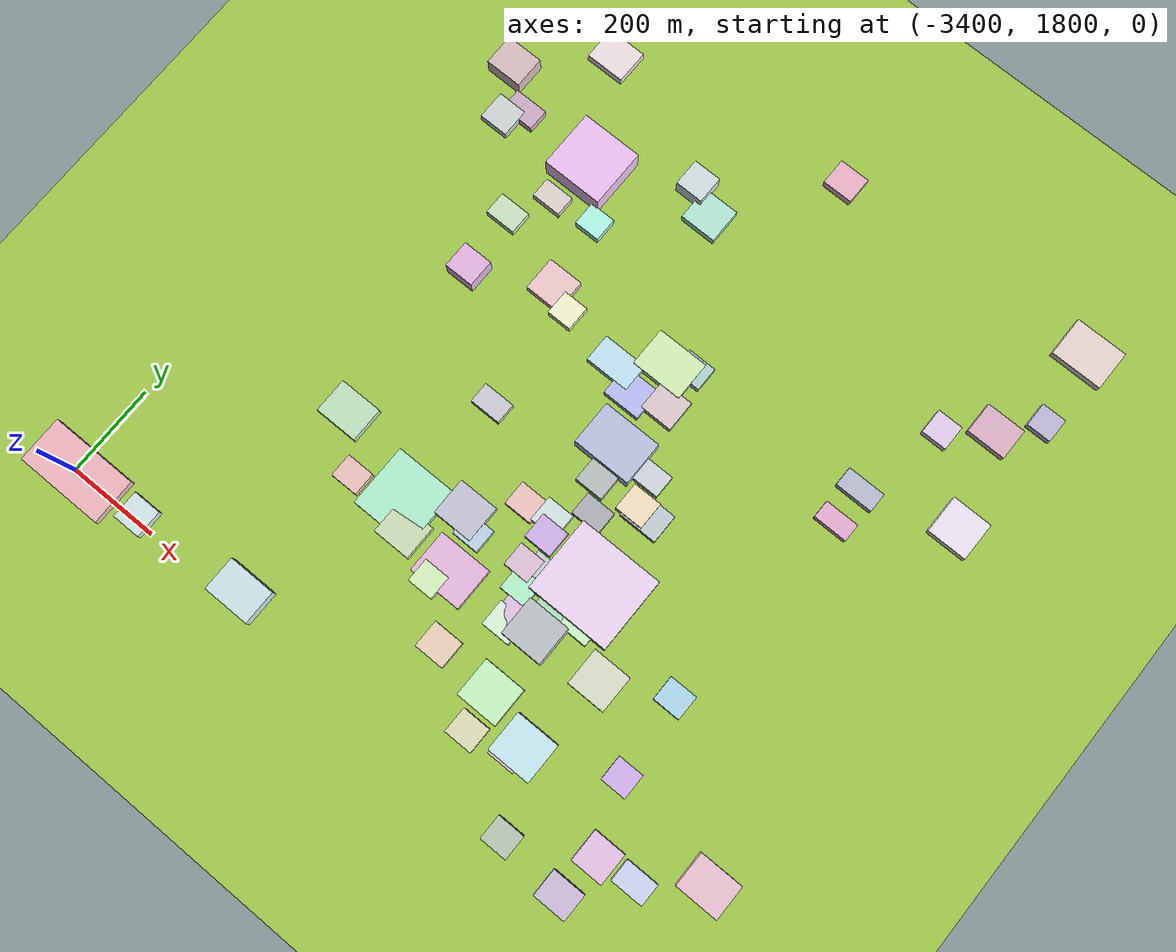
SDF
<sdf version="1.9">
 <world name="city_map">
  <model name="ground_plane">
   <static>1</static>
   <link name="link">
    <collision name="collision">
     <geometry><plane><normal>0 0 1</normal><size>11000 11000</size></plane></geometry>
    </collision>
    <visual name="visual">
     <geometry><plane><normal>0 0 1</normal><size>11000 11000</size></plane></geometry>
     <material>
      <ambient>0.551 0.712 0.210 1</ambient>
      <diffuse>0.651 0.812 0.310 1</diffuse>
      <specular>0.1 0.1 0.05 1</specular>
     </material>
    </visual>
   </link>
  </model>
  <model name="building_879147786">
   <static>1</static>
   <pose>-2475.6158864132262 2263.349169115743 24.0 0 0 0</pose>
   <link name="link">
    <collision name="collision">
     <geometry><box><size>185.12046100391242 163.76940000043305 48.0</size></box></geometry>
    </collision>
    <visual name="visual">
     <cast_shadows>false</cast_shadows>
     <geometry><box><size>185.12046100391242 163.76940000043305 48.0</size></box></geometry>
     <material>
      <ambient>0.858 0.766 0.887 1</ambient>
      <diffuse>0.958 0.866 0.987 1</diffuse>
      <specular>0.287 0.260 0.296 1</specular>
      <emissive>0.01 0.01 0.01 1</emissive>
     </material>
    </visual>
   </link>
  </model>
  <model name="building_85861803">
   <static>1</static>
   <pose>-3391.635046473772 1801.335572656015 10.0 0 0 0</pose>
   <link name="link">
    <collision name="collision">
     <geometry><box><size>196.1031298893377 102.05340000008789 20</size></box></geometry>
    </collision>
    <visual name="visual">
     <cast_shadows>false</cast_shadows>
     <geometry><box><size>196.1031298893377 102.05340000008789 20</size></box></geometry>
     <material>
      <ambient>0.858 0.639 0.666 1</ambient>
      <diffuse>0.958 0.739 0.766 1</diffuse>
      <specular>0.287 0.222 0.230 1</specular>
      <emissive>0.01 0.01 0.01 1</emissive>
     </material>
    </visual>
   </link>
  </model>
  <model name="building_866045146">
   <static>1</static>
   <pose>-2866.7450912046484 2163.6793318669265 10.0 0 0 0</pose>
   <link name="link">
    <collision name="collision">
     <geometry><box><size>136.9206914513694 136.65209999980732 20</size></box></geometry>
    </collision>
    <visual name="visual">
     <cast_shadows>false</cast_shadows>
     <geometry><box><size>136.9206914513694 136.65209999980732 20</size></box></geometry>
     <material>
      <ambient>0.611 0.873 0.738 1</ambient>
      <diffuse>0.711 0.973 0.838 1</diffuse>
      <specular>0.213 0.292 0.251 1</specular>
      <emissive>0.01 0.01 0.01 1</emissive>
     </material>
    </visual>
   </link>
  </model>
  <model name="building_344655658">
   <static>1</static>
   <pose>-3015.9660182557045 2918.9910726629623 27.0 0 0 0</pose>
   <link name="link">
    <collision name="collision">
     <geometry><box><size>134.49679604138012 128.68229999973835 54.0</size></box></geometry>
    </collision>
    <visual name="visual">
     <cast_shadows>false</cast_shadows>
     <geometry><box><size>134.49679604138012 128.68229999973835 54.0</size></box></geometry>
     <material>
      <ambient>0.863 0.682 0.879 1</ambient>
      <diffuse>0.963 0.782 0.979 1</diffuse>
      <specular>0.289 0.235 0.294 1</specular>
      <emissive>0.01 0.01 0.01 1</emissive>
     </material>
    </visual>
   </link>
  </model>
  <model name="building_946005720">
   <static>1</static>
   <pose>-2614.292848086629 2502.6022625291644 21.48143881944182 0 0 0</pose>
   <link name="link">
    <collision name="collision">
     <geometry><box><size>129.5526520206384 96.9806999999605 42.96287763888364</size></box></geometry>
    </collision>
    <visual name="visual">
     <cast_shadows>false</cast_shadows>
     <geometry><box><size>129.5526520206384 96.9806999999605 42.96287763888364</size></box></geometry>
     <material>
      <ambient>0.655 0.685 0.811 1</ambient>
      <diffuse>0.755 0.785 0.911 1</diffuse>
      <specular>0.227 0.236 0.273 1</specular>
      <emissive>0.01 0.01 0.01 1</emissive>
     </material>
    </visual>
   </link>
  </model>
  <model name="building_783467833">
   <static>1</static>
   <pose>-2706.9545047538063 2112.014782937045 10.0 0 0 0</pose>
   <link name="link">
    <collision name="collision">
     <geometry><box><size>118.29269999978465 93.9365907309301 20</size></box></geometry>
    </collision>
    <visual name="visual">
     <cast_shadows>false</cast_shadows>
     <geometry><box><size>118.29269999978465 93.9365907309301 20</size></box></geometry>
     <material>
      <ambient>0.834 0.642 0.799 1</ambient>
      <diffuse>0.934 0.742 0.899 1</diffuse>
      <specular>0.280 0.222 0.270 1</specular>
      <emissive>0.01 0.01 0.01 1</emissive>
     </material>
    </visual>
   </link>
  </model>
  <model name="building_215615891">
   <static>1</static>
   <pose>-2010.9463017703183 3234.4588021308014 10.0 0 0 0</pose>
   <link name="link">
    <collision name="collision">
     <geometry><box><size>113.16449999979739 88.53594554040069 20</size></box></geometry>
    </collision>
    <visual name="visual">
     <cast_shadows>false</cast_shadows>
     <geometry><box><size>113.16449999979739 88.53594554040069 20</size></box></geometry>
     <material>
      <ambient>0.837 0.768 0.740 1</ambient>
      <diffuse>0.937 0.868 0.840 1</diffuse>
      <specular>0.281 0.260 0.252 1</specular>
      <emissive>0.01 0.01 0.01 1</emissive>
     </material>
    </visual>
   </link>
  </model>
  <model name="building_570115807">
   <static>1</static>
   <pose>-2635.9378683675336 2694.9322512084404 10.5 0 0 0</pose>
   <link name="link">
    <collision name="collision">
     <geometry><box><size>113.61960000038351 86.33157377373661 21.0</size></box></geometry>
    </collision>
    <visual name="visual">
     <cast_shadows>false</cast_shadows>
     <geometry><box><size>113.61960000038351 86.33157377373661 21.0</size></box></geometry>
     <material>
      <ambient>0.751 0.882 0.631 1</ambient>
      <diffuse>0.851 0.982 0.731 1</diffuse>
      <specular>0.255 0.295 0.219 1</specular>
      <emissive>0.01 0.01 0.01 1</emissive>
     </material>
    </visual>
   </link>
  </model>
  <model name="building_210839665">
   <static>1</static>
   <pose>-2386.6716477241607 1948.1128758260165 32.9745970106186 0 0 0</pose>
   <link name="link">
    <collision name="collision">
     <geometry><box><size>96.09269999983638 87.3710264299206 65.9491940212372</size></box></geometry>
    </collision>
    <visual name="visual">
     <cast_shadows>false</cast_shadows>
     <geometry><box><size>96.09269999983638 87.3710264299206 65.9491940212372</size></box></geometry>
     <material>
      <ambient>0.705 0.836 0.875 1</ambient>
      <diffuse>0.805 0.936 0.975 1</diffuse>
      <specular>0.241 0.281 0.292 1</specular>
      <emissive>0.01 0.01 0.01 1</emissive>
     </material>
    </visual>
   </link>
  </model>
  <model name="building_899558853">
   <static>1</static>
   <pose>-2498.672047824087 1986.0535114221284 18.0 0 0 0</pose>
   <link name="link">
    <collision name="collision">
     <geometry><box><size>92.51504839316905 85.60320000029265 36.0</size></box></geometry>
    </collision>
    <visual name="visual">
     <cast_shadows>false</cast_shadows>
     <geometry><box><size>92.51504839316905 85.60320000029265 36.0</size></box></geometry>
     <material>
      <ambient>0.698 0.898 0.680 1</ambient>
      <diffuse>0.798 0.998 0.780 1</diffuse>
      <specular>0.239 0.299 0.234 1</specular>
      <emissive>0.01 0.01 0.01 1</emissive>
     </material>
    </visual>
   </link>
  </model>
  <model name="building_577286876">
   <static>1</static>
   <pose>-2989.4264043737608 1829.2795751096094 17.494508205359544 0 0 0</pose>
   <link name="link">
    <collision name="collision">
     <geometry><box><size>104.11698517913607 75.80190000011555 34.98901641071909</size></box></geometry>
    </collision>
    <visual name="visual">
     <cast_shadows>false</cast_shadows>
     <geometry><box><size>104.11698517913607 75.80190000011555 34.98901641071909</size></box></geometry>
     <material>
      <ambient>0.713 0.819 0.828 1</ambient>
      <diffuse>0.813 0.919 0.928 1</diffuse>
      <specular>0.244 0.276 0.278 1</specular>
      <emissive>0.01 0.01 0.01 1</emissive>
     </material>
    </visual>
   </link>
  </model>
  <model name="building_947086551">
   <static>1</static>
   <pose>-2504.7838367184354 2125.1626707327173 39.74862783147963 0 0 0</pose>
   <link name="link">
    <collision name="collision">
     <geometry><box><size>91.5941470257274 85.11479999931737 79.49725566295926</size></box></geometry>
    </collision>
    <visual name="visual">
     <cast_shadows>false</cast_shadows>
     <geometry><box><size>91.5941470257274 85.11479999931737 79.49725566295926</size></box></geometry>
     <material>
      <ambient>0.660 0.675 0.693 1</ambient>
      <diffuse>0.760 0.775 0.793 1</diffuse>
      <specular>0.228 0.233 0.238 1</specular>
      <emissive>0.01 0.01 0.01 1</emissive>
     </material>
    </visual>
   </link>
  </model>
  <model name="building_627828713">
   <static>1</static>
   <pose>-2002.8119284216698 2794.1280551823697 10.5 0 0 0</pose>
   <link name="link">
    <collision name="collision">
     <geometry><box><size>87.40140000001162 85.04039429190097 21.0</size></box></geometry>
    </collision>
    <visual name="visual">
     <cast_shadows>false</cast_shadows>
     <geometry><box><size>87.40140000001162 85.04039429190097 21.0</size></box></geometry>
     <material>
      <ambient>0.851 0.821 0.896 1</ambient>
      <diffuse>0.951 0.921 0.996 1</diffuse>
      <specular>0.285 0.276 0.299 1</specular>
      <emissive>0.01 0.01 0.01 1</emissive>
     </material>
    </visual>
   </link>
  </model>
  <model name="building_940536575">
   <static>1</static>
   <pose>-1965.4070207359505 1971.2268262350988 10.5 0 0 0</pose>
   <link name="link">
    <collision name="collision">
     <geometry><box><size>95.87076168859215 76.65659999985053 21.0</size></box></geometry>
    </collision>
    <visual name="visual">
     <cast_shadows>false</cast_shadows>
     <geometry><box><size>95.87076168859215 76.65659999985053 21.0</size></box></geometry>
     <material>
      <ambient>0.854 0.677 0.743 1</ambient>
      <diffuse>0.954 0.777 0.843 1</diffuse>
      <specular>0.286 0.233 0.253 1</specular>
      <emissive>0.01 0.01 0.01 1</emissive>
     </material>
    </visual>
   </link>
  </model>
  <model name="building_670704136">
   <static>1</static>
   <pose>-3062.4952320343245 2225.1962430927715 10.5 0 0 0</pose>
   <link name="link">
    <collision name="collision">
     <geometry><box><size>94.95426636092446 76.23480000044225 21.0</size></box></geometry>
    </collision>
    <visual name="visual">
     <cast_shadows>false</cast_shadows>
     <geometry><box><size>94.95426636092446 76.23480000044225 21.0</size></box></geometry>
     <material>
      <ambient>0.676 0.819 0.661 1</ambient>
      <diffuse>0.776 0.919 0.761 1</diffuse>
      <specular>0.233 0.276 0.228 1</specular>
      <emissive>0.01 0.01 0.01 1</emissive>
     </material>
    </visual>
   </link>
  </model>
  <model name="building_35139141">
   <static>1</static>
   <pose>-2758.6938292328455 2219.1275292376686 10.5 0 0 0</pose>
   <link name="link">
    <collision name="collision">
     <geometry><box><size>88.61489346797902 81.27419999939178 21.0</size></box></geometry>
    </collision>
    <visual name="visual">
     <cast_shadows>false</cast_shadows>
     <geometry><box><size>88.61489346797902 81.27419999939178 21.0</size></box></geometry>
     <material>
      <ambient>0.689 0.690 0.761 1</ambient>
      <diffuse>0.789 0.790 0.861 1</diffuse>
      <specular>0.237 0.237 0.258 1</specular>
      <emissive>0.01 0.01 0.01 1</emissive>
     </material>
    </visual>
   </link>
  </model>
  <model name="building_981152130">
   <static>1</static>
   <pose>-2355.663001954758 2131.568528507929 10.5 0 0 0</pose>
   <link name="link">
    <collision name="collision">
     <geometry><box><size>85.46371120973969 82.21770000016448 21.0</size></box></geometry>
    </collision>
    <visual name="visual">
     <cast_shadows>false</cast_shadows>
     <geometry><box><size>85.46371120973969 82.21770000016448 21.0</size></box></geometry>
     <material>
      <ambient>0.776 0.806 0.713 1</ambient>
      <diffuse>0.876 0.906 0.813 1</diffuse>
      <specular>0.263 0.272 0.244 1</specular>
      <emissive>0.01 0.01 0.01 1</emissive>
     </material>
    </visual>
   </link>
  </model>
  <model name="building_1615853">
   <static>1</static>
   <pose>-3129.561694613131 3136.280148766275 10.0 0 0 0</pose>
   <link name="link">
    <collision name="collision">
     <geometry><box><size>86.26920000018856 73.49223417632824 20</size></box></geometry>
    </collision>
    <visual name="visual">
     <cast_shadows>false</cast_shadows>
     <geometry><box><size>86.26920000018856 73.49223417632824 20</size></box></geometry>
     <material>
      <ambient>0.861 0.809 0.814 1</ambient>
      <diffuse>0.961 0.909 0.914 1</diffuse>
      <specular>0.288 0.273 0.274 1</specular>
      <emissive>0.01 0.01 0.01 1</emissive>
     </material>
    </visual>
   </link>
  </model>
  <model name="building_337979278">
   <static>1</static>
   <pose>-2826.712456906082 2115.6351810619067 10.0 0 0 0</pose>
   <link name="link">
    <collision name="collision">
     <geometry><box><size>83.58727454214666 75.53550000015719 20</size></box></geometry>
    </collision>
    <visual name="visual">
     <cast_shadows>false</cast_shadows>
     <geometry><box><size>83.58727454214666 75.53550000015719 20</size></box></geometry>
     <material>
      <ambient>0.724 0.798 0.642 1</ambient>
      <diffuse>0.824 0.898 0.742 1</diffuse>
      <specular>0.247 0.269 0.223 1</specular>
      <emissive>0.01 0.01 0.01 1</emissive>
     </material>
    </visual>
   </link>
  </model>
  <model name="building_630728748">
   <static>1</static>
   <pose>-2767.26613560664 2987.1128462501283 10.0 0 0 0</pose>
   <link name="link">
    <collision name="collision">
     <geometry><box><size>80.58600000002514 76.33617782227033 20</size></box></geometry>
    </collision>
    <visual name="visual">
     <cast_shadows>false</cast_shadows>
     <geometry><box><size>80.58600000002514 76.33617782227033 20</size></box></geometry>
     <material>
      <ambient>0.617 0.838 0.778 1</ambient>
      <diffuse>0.717 0.938 0.878 1</diffuse>
      <specular>0.215 0.282 0.263 1</specular>
      <emissive>0.01 0.01 0.01 1</emissive>
     </material>
    </visual>
   </link>
  </model>
  <model name="building_688814182">
   <static>1</static>
   <pose>-2060.4743428047454 2992.831896157199 10.0 0 0 0</pose>
   <link name="link">
    <collision name="collision">
     <geometry><box><size>86.11715726558552 69.53039999938682 20</size></box></geometry>
    </collision>
    <visual name="visual">
     <cast_shadows>false</cast_shadows>
     <geometry><box><size>86.11715726558552 69.53039999938682 20</size></box></geometry>
     <material>
      <ambient>0.792 0.619 0.694 1</ambient>
      <diffuse>0.892 0.719 0.794 1</diffuse>
      <specular>0.268 0.216 0.238 1</specular>
      <emissive>0.01 0.01 0.01 1</emissive>
     </material>
    </visual>
   </link>
  </model>
  <model name="building_608480970">
   <static>1</static>
   <pose>-2718.6632805286345 2630.48441738512 10.0 0 0 0</pose>
   <link name="link">
    <collision name="collision">
     <geometry><box><size>98.36819999961222 60.801918084848445 20</size></box></geometry>
    </collision>
    <visual name="visual">
     <cast_shadows>false</cast_shadows>
     <geometry><box><size>98.36819999961222 60.801918084848445 20</size></box></geometry>
     <material>
      <ambient>0.676 0.817 0.879 1</ambient>
      <diffuse>0.776 0.917 0.979 1</diffuse>
      <specular>0.233 0.275 0.294 1</specular>
      <emissive>0.01 0.01 0.01 1</emissive>
     </material>
    </visual>
   </link>
  </model>
  <model name="building_79071397">
   <static>1</static>
   <pose>-2914.463725740065 2675.810282062825 10.0 0 0 0</pose>
   <link name="link">
    <collision name="collision">
     <geometry><box><size>78.38820000036861 74.90331681163828 20</size></box></geometry>
    </collision>
    <visual name="visual">
     <cast_shadows>false</cast_shadows>
     <geometry><box><size>78.38820000036861 74.90331681163828 20</size></box></geometry>
     <material>
      <ambient>0.868 0.714 0.727 1</ambient>
      <diffuse>0.968 0.814 0.827 1</diffuse>
      <specular>0.290 0.244 0.248 1</specular>
      <emissive>0.01 0.01 0.01 1</emissive>
     </material>
    </visual>
   </link>
  </model>
  <model name="building_448837698">
   <static>1</static>
   <pose>-2658.3584441567004 2603.887920911739 10.0 0 0 0</pose>
   <link name="link">
    <collision name="collision">
     <geometry><box><size>83.13899999988905 68.85592324830375 20</size></box></geometry>
    </collision>
    <visual name="visual">
     <cast_shadows>false</cast_shadows>
     <geometry><box><size>83.13899999988905 68.85592324830375 20</size></box></geometry>
     <material>
      <ambient>0.651 0.671 0.881 1</ambient>
      <diffuse>0.751 0.771 0.981 1</diffuse>
      <specular>0.225 0.231 0.294 1</specular>
      <emissive>0.01 0.01 0.01 1</emissive>
     </material>
    </visual>
   </link>
  </model>
  <model name="building_640028606">
   <static>1</static>
   <pose>-3276.129303851273 2986.666077693029 19.5 0 0 0</pose>
   <link name="link">
    <collision name="collision">
     <geometry><box><size>81.66900226531105 69.53040000017552 39.0</size></box></geometry>
    </collision>
    <visual name="visual">
     <cast_shadows>false</cast_shadows>
     <geometry><box><size>81.66900226531105 69.53040000017552 39.0</size></box></geometry>
     <material>
      <ambient>0.761 0.664 0.669 1</ambient>
      <diffuse>0.861 0.764 0.769 1</diffuse>
      <specular>0.258 0.229 0.231 1</specular>
      <emissive>0.01 0.01 0.01 1</emissive>
     </material>
    </visual>
   </link>
  </model>
  <model name="building_61134350">
   <static>1</static>
   <pose>-2481.7664568403006 2433.263886146131 10.0 0 0 0</pose>
   <link name="link">
    <collision name="collision">
     <geometry><box><size>85.60320000029265 63.17412362723873 20</size></box></geometry>
    </collision>
    <visual name="visual">
     <cast_shadows>false</cast_shadows>
     <geometry><box><size>85.60320000029265 63.17412362723873 20</size></box></geometry>
     <material>
      <ambient>0.685 0.734 0.761 1</ambient>
      <diffuse>0.785 0.834 0.861 1</diffuse>
      <specular>0.235 0.250 0.258 1</specular>
      <emissive>0.01 0.01 0.01 1</emissive>
     </material>
    </visual>
   </link>
  </model>
  <model name="building_143504427">
   <static>1</static>
   <pose>-2154.3055944039324 1882.1047162196348 10.0 0 0 0</pose>
   <link name="link">
    <collision name="collision">
     <geometry><box><size>70.83085970901733 70.59600000000898 20</size></box></geometry>
    </collision>
    <visual name="visual">
     <cast_shadows>false</cast_shadows>
     <geometry><box><size>70.83085970901733 70.59600000000898 20</size></box></geometry>
     <material>
      <ambient>0.829 0.679 0.836 1</ambient>
      <diffuse>0.929 0.779 0.936 1</diffuse>
      <specular>0.279 0.234 0.281 1</specular>
      <emissive>0.01 0.01 0.01 1</emissive>
     </material>
    </visual>
   </link>
  </model>
  <model name="building_810127790">
   <static>1</static>
   <pose>-2589.1663256776405 2626.3164838348075 10.0 0 0 0</pose>
   <link name="link">
    <collision name="collision">
     <geometry><box><size>72.10560000029886 67.86327033099373 20</size></box></geometry>
    </collision>
    <visual name="visual">
     <cast_shadows>false</cast_shadows>
     <geometry><box><size>72.10560000029886 67.86327033099373 20</size></box></geometry>
     <material>
      <ambient>0.786 0.719 0.732 1</ambient>
      <diffuse>0.886 0.819 0.832 1</diffuse>
      <specular>0.266 0.246 0.250 1</specular>
      <emissive>0.01 0.01 0.01 1</emissive>
     </material>
    </visual>
   </link>
  </model>
  <model name="building_408493309">
   <static>1</static>
   <pose>-2167.4243811465226 1785.0841415086393 10.0 0 0 0</pose>
   <link name="link">
    <collision name="collision">
     <geometry><box><size>73.10460000014274 60.34014417230824 20</size></box></geometry>
    </collision>
    <visual name="visual">
     <cast_shadows>false</cast_shadows>
     <geometry><box><size>73.10460000014274 60.34014417230824 20</size></box></geometry>
     <material>
      <ambient>0.722 0.663 0.779 1</ambient>
      <diffuse>0.822 0.763 0.879 1</diffuse>
      <specular>0.247 0.229 0.264 1</specular>
      <emissive>0.01 0.01 0.01 1</emissive>
     </material>
    </visual>
   </link>
  </model>
  <model name="building_903801297">
   <static>1</static>
   <pose>-2554.6888303282535 2129.649713067575 10.0 0 0 0</pose>
   <link name="link">
    <collision name="collision">
     <geometry><box><size>71.24571602628255 61.44959999959809 20</size></box></geometry>
    </collision>
    <visual name="visual">
     <cast_shadows>false</cast_shadows>
     <geometry><box><size>71.24571602628255 61.44959999959809 20</size></box></geometry>
     <material>
      <ambient>0.814 0.691 0.829 1</ambient>
      <diffuse>0.914 0.791 0.929 1</diffuse>
      <specular>0.274 0.237 0.279 1</specular>
      <emissive>0.01 0.01 0.01 1</emissive>
     </material>
    </visual>
   </link>
  </model>
  <model name="building_413678002">
   <static>1</static>
   <pose>-2568.2058932988616 2218.0732269114787 10.0 0 0 0</pose>
   <link name="link">
    <collision name="collision">
     <geometry><box><size>64.99049999996487 62.99460161708985 20</size></box></geometry>
    </collision>
    <visual name="visual">
     <cast_shadows>false</cast_shadows>
     <geometry><box><size>64.99049999996487 62.99460161708985 20</size></box></geometry>
     <material>
      <ambient>0.697 0.751 0.731 1</ambient>
      <diffuse>0.797 0.851 0.831 1</diffuse>
      <specular>0.239 0.255 0.249 1</specular>
      <emissive>0.01 0.01 0.01 1</emissive>
     </material>
    </visual>
   </link>
  </model>
  <model name="building_245707077">
   <static>1</static>
   <pose>-2449.1087232795016 2195.032329933049 12.0 0 0 0</pose>
   <link name="link">
    <collision name="collision">
     <geometry><box><size>64.56869999976789 62.387321941648366 24.0</size></box></geometry>
    </collision>
    <visual name="visual">
     <cast_shadows>false</cast_shadows>
     <geometry><box><size>64.56869999976789 62.387321941648366 24.0</size></box></geometry>
     <material>
      <ambient>0.726 0.898 0.712 1</ambient>
      <diffuse>0.826 0.998 0.812 1</diffuse>
      <specular>0.248 0.299 0.244 1</specular>
      <emissive>0.01 0.01 0.01 1</emissive>
     </material>
    </visual>
   </link>
  </model>
  <model name="building_501111259">
   <static>1</static>
   <pose>-3225.7504250291618 2889.8751707760916 10.0 0 0 0</pose>
   <link name="link">
    <collision name="collision">
     <geometry><box><size>64.43051628998495 62.504100000090546 20</size></box></geometry>
    </collision>
    <visual name="visual">
     <cast_shadows>false</cast_shadows>
     <geometry><box><size>64.43051628998495 62.504100000090546 20</size></box></geometry>
     <material>
      <ambient>0.739 0.761 0.767 1</ambient>
      <diffuse>0.839 0.861 0.867 1</diffuse>
      <specular>0.252 0.258 0.260 1</specular>
      <emissive>0.01 0.01 0.01 1</emissive>
     </material>
    </visual>
   </link>
  </model>
  <model name="building_16214457">
   <static>1</static>
   <pose>-2632.5115337167595 1991.8336619847116 10.0 0 0 0</pose>
   <link name="link">
    <collision name="collision">
     <geometry><box><size>66.70406244100212 60.273000000044874 20</size></box></geometry>
    </collision>
    <visual name="visual">
     <cast_shadows>false</cast_shadows>
     <geometry><box><size>66.70406244100212 60.273000000044874 20</size></box></geometry>
     <material>
      <ambient>0.851 0.747 0.651 1</ambient>
      <diffuse>0.951 0.847 0.751 1</diffuse>
      <specular>0.285 0.254 0.225 1</specular>
      <emissive>0.01 0.01 0.01 1</emissive>
     </material>
    </visual>
   </link>
  </model>
  <model name="building_913110147">
   <static>1</static>
   <pose>-3068.69962533695 2597.033569112925 21.0 0 0 0</pose>
   <link name="link">
    <collision name="collision">
     <geometry><box><size>65.50774184398175 60.4394999996245 42.0</size></box></geometry>
    </collision>
    <visual name="visual">
     <cast_shadows>false</cast_shadows>
     <geometry><box><size>65.50774184398175 60.4394999996245 42.0</size></box></geometry>
     <material>
      <ambient>0.824 0.632 0.807 1</ambient>
      <diffuse>0.924 0.732 0.907 1</diffuse>
      <specular>0.277 0.220 0.272 1</specular>
      <emissive>0.01 0.01 0.01 1</emissive>
     </material>
    </visual>
   </link>
  </model>
  <model name="building_689284473">
   <static>1</static>
   <pose>-2597.9665911249895 3217.471904329083 10.0 0 0 0</pose>
   <link name="link">
    <collision name="collision">
     <geometry><box><size>66.95067834700204 58.952099999594054 20</size></box></geometry>
    </collision>
    <visual name="visual">
     <cast_shadows>false</cast_shadows>
     <geometry><box><size>66.95067834700204 58.952099999594054 20</size></box></geometry>
     <material>
      <ambient>0.858 0.622 0.710 1</ambient>
      <diffuse>0.958 0.722 0.810 1</diffuse>
      <specular>0.287 0.217 0.243 1</specular>
      <emissive>0.01 0.01 0.01 1</emissive>
     </material>
    </visual>
   </link>
  </model>
  <model name="building_741923573">
   <static>1</static>
   <pose>-3243.233954253533 1812.3939081116557 10.0 0 0 0</pose>
   <link name="link">
    <collision name="collision">
     <geometry><box><size>63.09438338532129 61.29420000014818 20</size></box></geometry>
    </collision>
    <visual name="visual">
     <cast_shadows>false</cast_shadows>
     <geometry><box><size>63.09438338532129 61.29420000014818 20</size></box></geometry>
     <material>
      <ambient>0.752 0.825 0.837 1</ambient>
      <diffuse>0.852 0.925 0.937 1</diffuse>
      <specular>0.256 0.278 0.281 1</specular>
      <emissive>0.01 0.01 0.01 1</emissive>
     </material>
    </visual>
   </link>
  </model>
  <model name="building_109825586">
   <static>1</static>
   <pose>-2506.855120030733 2435.86386180665 12.0 0 0 0</pose>
   <link name="link">
    <collision name="collision">
     <geometry><box><size>63.28202011092925 60.37290000042361 24.0</size></box></geometry>
    </collision>
    <visual name="visual">
     <cast_shadows>false</cast_shadows>
     <geometry><box><size>63.28202011092925 60.37290000042361 24.0</size></box></geometry>
     <material>
      <ambient>0.892 0.806 0.687 1</ambient>
      <diffuse>0.992 0.906 0.787 1</diffuse>
      <specular>0.298 0.272 0.236 1</specular>
      <emissive>0.01 0.01 0.01 1</emissive>
     </material>
    </visual>
   </link>
  </model>
  <model name="building_262985423">
   <static>1</static>
   <pose>-2601.5349996942155 2430.559863806929 12.0 0 0 0</pose>
   <link name="link">
    <collision name="collision">
     <geometry><box><size>63.05257908742899 59.82899999958846 24.0</size></box></geometry>
    </collision>
    <visual name="visual">
     <cast_shadows>false</cast_shadows>
     <geometry><box><size>63.05257908742899 59.82899999958846 24.0</size></box></geometry>
     <material>
      <ambient>0.645 0.670 0.675 1</ambient>
      <diffuse>0.745 0.770 0.775 1</diffuse>
      <specular>0.224 0.231 0.233 1</specular>
      <emissive>0.01 0.01 0.01 1</emissive>
     </material>
    </visual>
   </link>
  </model>
  <model name="building_404979914">
   <static>1</static>
   <pose>-2824.990973996301 3021.4748863757795 19.881158038815055 0 0 0</pose>
   <link name="link">
    <collision name="collision">
     <geometry><box><size>61.86029999966536 60.55421568638733 39.76231607763011</size></box></geometry>
    </collision>
    <visual name="visual">
     <cast_shadows>false</cast_shadows>
     <geometry><box><size>61.86029999966536 60.55421568638733 39.76231607763011</size></box></geometry>
     <material>
      <ambient>0.745 0.805 0.806 1</ambient>
      <diffuse>0.845 0.905 0.906 1</diffuse>
      <specular>0.254 0.271 0.272 1</specular>
      <emissive>0.01 0.01 0.01 1</emissive>
     </material>
    </visual>
   </link>
  </model>
  <model name="building_510384128">
   <static>1</static>
   <pose>-2562.8716018102723 2102.203098673912 10.0 0 0 0</pose>
   <link name="link">
    <collision name="collision">
     <geometry><box><size>64.41330000031797 57.379232201680296 20</size></box></geometry>
    </collision>
    <visual name="visual">
     <cast_shadows>false</cast_shadows>
     <geometry><box><size>64.41330000031797 57.379232201680296 20</size></box></geometry>
     <material>
      <ambient>0.780 0.897 0.790 1</ambient>
      <diffuse>0.880 0.997 0.890 1</diffuse>
      <specular>0.264 0.299 0.267 1</specular>
      <emissive>0.01 0.01 0.01 1</emissive>
     </material>
    </visual>
   </link>
  </model>
  <model name="building_176221814">
   <static>1</static>
   <pose>-2195.381837793659 2733.239824028919 10.0 0 0 0</pose>
   <link name="link">
    <collision name="collision">
     <geometry><box><size>83.51639999956717 42.730007724002185 20</size></box></geometry>
    </collision>
    <visual name="visual">
     <cast_shadows>false</cast_shadows>
     <geometry><box><size>83.51639999956717 42.730007724002185 20</size></box></geometry>
     <material>
      <ambient>0.646 0.664 0.748 1</ambient>
      <diffuse>0.746 0.764 0.848 1</diffuse>
      <specular>0.224 0.229 0.254 1</specular>
      <emissive>0.01 0.01 0.01 1</emissive>
     </material>
    </visual>
   </link>
  </model>
  <model name="building_528582758">
   <static>1</static>
   <pose>-2488.3357967059565 1904.3068402267775 10.96943921224273 0 0 0</pose>
   <link name="link">
    <collision name="collision">
     <geometry><box><size>63.09998374677945 56.47679999984945 21.93887842448546</size></box></geometry>
    </collision>
    <visual name="visual">
     <cast_shadows>false</cast_shadows>
     <geometry><box><size>63.09998374677945 56.47679999984945 21.93887842448546</size></box></geometry>
     <material>
      <ambient>0.788 0.788 0.645 1</ambient>
      <diffuse>0.888 0.888 0.745 1</diffuse>
      <specular>0.266 0.266 0.224 1</specular>
      <emissive>0.01 0.01 0.01 1</emissive>
     </material>
    </visual>
   </link>
  </model>
  <model name="building_295418033">
   <static>1</static>
   <pose>-2510.7323499264257 2178.7335364366245 10.5 0 0 0</pose>
   <link name="link">
    <collision name="collision">
     <geometry><box><size>60.335143818199334 58.6967999997654 21.0</size></box></geometry>
    </collision>
    <visual name="visual">
     <cast_shadows>false</cast_shadows>
     <geometry><box><size>60.335143818199334 58.6967999997654 21.0</size></box></geometry>
     <material>
      <ambient>0.600 0.809 0.670 1</ambient>
      <diffuse>0.700 0.909 0.770 1</diffuse>
      <specular>0.210 0.273 0.231 1</specular>
      <emissive>0.01 0.01 0.01 1</emissive>
     </material>
    </visual>
   </link>
  </model>
  <model name="building_912738707">
   <static>1</static>
   <pose>-2074.5916321780514 1889.7143112156634 10.0 0 0 0</pose>
   <link name="link">
    <collision name="collision">
     <geometry><box><size>72.26100000053748 48.99616855645395 20</size></box></geometry>
    </collision>
    <visual name="visual">
     <cast_shadows>false</cast_shadows>
     <geometry><box><size>72.26100000053748 48.99616855645395 20</size></box></geometry>
     <material>
      <ambient>0.731 0.758 0.888 1</ambient>
      <diffuse>0.831 0.858 0.988 1</diffuse>
      <specular>0.249 0.257 0.296 1</specular>
      <emissive>0.01 0.01 0.01 1</emissive>
     </material>
    </visual>
   </link>
  </model>
  <model name="building_970566764">
   <static>1</static>
   <pose>-2607.7523737444703 2281.138648536715 10.0 0 0 0</pose>
   <link name="link">
    <collision name="collision">
     <geometry><box><size>61.94076351030532 56.63220000008806 20</size></box></geometry>
    </collision>
    <visual name="visual">
     <cast_shadows>false</cast_shadows>
     <geometry><box><size>61.94076351030532 56.63220000008806 20</size></box></geometry>
     <material>
      <ambient>0.741 0.615 0.850 1</ambient>
      <diffuse>0.841 0.715 0.950 1</diffuse>
      <specular>0.252 0.215 0.285 1</specular>
      <emissive>0.01 0.01 0.01 1</emissive>
     </material>
    </visual>
   </link>
  </model>
  <model name="building_72424405">
   <static>1</static>
   <pose>-3198.346274949569 2924.8422962995755 10.0 0 0 0</pose>
   <link name="link">
    <collision name="collision">
     <geometry><box><size>73.96123472249089 47.41919999968758 20</size></box></geometry>
    </collision>
    <visual name="visual">
     <cast_shadows>false</cast_shadows>
     <geometry><box><size>73.96123472249089 47.41919999968758 20</size></box></geometry>
     <material>
      <ambient>0.731 0.606 0.704 1</ambient>
      <diffuse>0.831 0.706 0.804 1</diffuse>
      <specular>0.249 0.212 0.241 1</specular>
      <emissive>0.01 0.01 0.01 1</emissive>
     </material>
    </visual>
   </link>
  </model>
  <model name="building_807374734">
   <static>1</static>
   <pose>-2620.8391511798422 2313.6767871642337 10.0 0 0 0</pose>
   <link name="link">
    <collision name="collision">
     <geometry><box><size>59.867675874787246 56.787599999537974 20</size></box></geometry>
    </collision>
    <visual name="visual">
     <cast_shadows>false</cast_shadows>
     <geometry><box><size>59.867675874787246 56.787599999537974 20</size></box></geometry>
     <material>
      <ambient>0.757 0.827 0.825 1</ambient>
      <diffuse>0.857 0.927 0.925 1</diffuse>
      <specular>0.257 0.278 0.278 1</specular>
      <emissive>0.01 0.01 0.01 1</emissive>
     </material>
    </visual>
   </link>
  </model>
  <model name="building_169867604">
   <static>1</static>
   <pose>-2592.470441602032 2716.454331076143 10.0 0 0 0</pose>
   <link name="link">
    <collision name="collision">
     <geometry><box><size>64.32470215603162 52.75829999977333 20</size></box></geometry>
    </collision>
    <visual name="visual">
     <cast_shadows>false</cast_shadows>
     <geometry><box><size>64.32470215603162 52.75829999977333 20</size></box></geometry>
     <material>
      <ambient>0.617 0.758 0.754 1</ambient>
      <diffuse>0.717 0.858 0.854 1</diffuse>
      <specular>0.215 0.257 0.256 1</specular>
      <emissive>0.01 0.01 0.01 1</emissive>
     </material>
    </visual>
   </link>
  </model>
  <model name="building_111166528">
   <static>1</static>
   <pose>-3082.7425901360734 2733.3850382833716 10.0 0 0 0</pose>
   <link name="link">
    <collision name="collision">
     <geometry><box><size>68.42039999982319 49.45342416138503 20</size></box></geometry>
    </collision>
    <visual name="visual">
     <cast_shadows>false</cast_shadows>
     <geometry><box><size>68.42039999982319 49.45342416138503 20</size></box></geometry>
     <material>
      <ambient>0.717 0.823 0.687 1</ambient>
      <diffuse>0.817 0.923 0.787 1</diffuse>
      <specular>0.245 0.277 0.236 1</specular>
      <emissive>0.01 0.01 0.01 1</emissive>
     </material>
    </visual>
   </link>
  </model>
  <model name="building_208731759">
   <static>1</static>
   <pose>-2313.802456306299 1797.3722677706864 10.0 0 0 0</pose>
   <link name="link">
    <collision name="collision">
     <geometry><box><size>61.29856187477413 54.600900000011166 20</size></box></geometry>
    </collision>
    <visual name="visual">
     <cast_shadows>false</cast_shadows>
     <geometry><box><size>61.29856187477413 54.600900000011166 20</size></box></geometry>
     <material>
      <ambient>0.644 0.704 0.621 1</ambient>
      <diffuse>0.744 0.804 0.721 1</diffuse>
      <specular>0.223 0.241 0.216 1</specular>
      <emissive>0.01 0.01 0.01 1</emissive>
     </material>
    </visual>
   </link>
  </model>
  <model name="building_246649531">
   <static>1</static>
   <pose>-2678.4094959358026 2305.3993598064303 10.0 0 0 0</pose>
   <link name="link">
    <collision name="collision">
     <geometry><box><size>62.00460000056296 53.85273609996996 20</size></box></geometry>
    </collision>
    <visual name="visual">
     <cast_shadows>false</cast_shadows>
     <geometry><box><size>62.00460000056296 53.85273609996996 20</size></box></geometry>
     <material>
      <ambient>0.865 0.700 0.678 1</ambient>
      <diffuse>0.965 0.800 0.778 1</diffuse>
      <specular>0.290 0.240 0.233 1</specular>
      <emissive>0.01 0.01 0.01 1</emissive>
     </material>
    </visual>
   </link>
  </model>
  <model name="building_148421702">
   <static>1</static>
   <pose>-2582.699820100099 2175.7143869831943 10.0 0 0 0</pose>
   <link name="link">
    <collision name="collision">
     <geometry><box><size>59.504820435867735 56.03280000018174 20</size></box></geometry>
    </collision>
    <visual name="visual">
     <cast_shadows>false</cast_shadows>
     <geometry><box><size>59.504820435867735 56.03280000018174 20</size></box></geometry>
     <material>
      <ambient>0.639 0.876 0.731 1</ambient>
      <diffuse>0.739 0.976 0.831 1</diffuse>
      <specular>0.222 0.293 0.249 1</specular>
      <emissive>0.01 0.01 0.01 1</emissive>
     </material>
    </visual>
   </link>
  </model>
  <model name="building_692894298">
   <static>1</static>
   <pose>-2224.8933300271574 2196.7721028648257 10.0 0 0 0</pose>
   <link name="link">
    <collision name="collision">
     <geometry><box><size>60.98980143917369 54.16799999968447 20</size></box></geometry>
    </collision>
    <visual name="visual">
     <cast_shadows>false</cast_shadows>
     <geometry><box><size>60.98980143917369 54.16799999968447 20</size></box></geometry>
     <material>
      <ambient>0.603 0.772 0.866 1</ambient>
      <diffuse>0.703 0.872 0.966 1</diffuse>
      <specular>0.211 0.262 0.290 1</specular>
      <emissive>0.01 0.01 0.01 1</emissive>
     </material>
    </visual>
   </link>
  </model>
  <model name="building_321419445">
   <static>1</static>
   <pose>-2565.191808535934 2370.704976800934 10.0 0 0 0</pose>
   <link name="link">
    <collision name="collision">
     <geometry><box><size>65.33459999925384 50.54399957169157 20</size></box></geometry>
    </collision>
    <visual name="visual">
     <cast_shadows>false</cast_shadows>
     <geometry><box><size>65.33459999925384 50.54399957169157 20</size></box></geometry>
     <material>
      <ambient>0.608 0.608 0.643 1</ambient>
      <diffuse>0.708 0.708 0.743 1</diffuse>
      <specular>0.212 0.212 0.223 1</specular>
      <emissive>0.01 0.01 0.01 1</emissive>
     </material>
    </visual>
   </link>
  </model>
  <model name="building_519991947">
   <static>1</static>
   <pose>-2523.416969644154 2497.1808537360453 10.0 0 0 0</pose>
   <link name="link">
    <collision name="collision">
     <geometry><box><size>66.10966205143498 49.239600000454686 20</size></box></geometry>
    </collision>
    <visual name="visual">
     <cast_shadows>false</cast_shadows>
     <geometry><box><size>66.10966205143498 49.239600000454686 20</size></box></geometry>
     <material>
      <ambient>0.746 0.767 0.807 1</ambient>
      <diffuse>0.846 0.867 0.907 1</diffuse>
      <specular>0.254 0.260 0.272 1</specular>
      <emissive>0.01 0.01 0.01 1</emissive>
     </material>
    </visual>
   </link>
  </model>
  <model name="building_789987670">
   <static>1</static>
   <pose>-2973.215709652137 2133.8835922746707 10.0 0 0 0</pose>
   <link name="link">
    <collision name="collision">
     <geometry><box><size>61.05138223790881 51.20429999975329 20</size></box></geometry>
    </collision>
    <visual name="visual">
     <cast_shadows>false</cast_shadows>
     <geometry><box><size>61.05138223790881 51.20429999975329 20</size></box></geometry>
     <material>
      <ambient>0.852 0.681 0.665 1</ambient>
      <diffuse>0.952 0.781 0.765 1</diffuse>
      <specular>0.286 0.234 0.230 1</specular>
      <emissive>0.01 0.01 0.01 1</emissive>
     </material>
    </visual>
   </link>
  </model>
  <model name="building_478651829">
   <static>1</static>
   <pose>-2210.386460606246 2021.1234646615378 10.0 0 0 0</pose>
   <link name="link">
    <collision name="collision">
     <geometry><box><size>56.598899999698915 55.1452401684873 20</size></box></geometry>
    </collision>
    <visual name="visual">
     <cast_shadows>false</cast_shadows>
     <geometry><box><size>56.598899999698915 55.1452401684873 20</size></box></geometry>
     <material>
      <ambient>0.748 0.618 0.864 1</ambient>
      <diffuse>0.848 0.718 0.964 1</diffuse>
      <specular>0.254 0.215 0.289 1</specular>
      <emissive>0.01 0.01 0.01 1</emissive>
     </material>
    </visual>
   </link>
  </model>
  <model name="building_457308918">
   <static>1</static>
   <pose>-2855.4260731457066 2413.91549958208 10.0 0 0 0</pose>
   <link name="link">
    <collision name="collision">
     <geometry><box><size>69.1529999997087 45.10230517192148 20</size></box></geometry>
    </collision>
    <visual name="visual">
     <cast_shadows>false</cast_shadows>
     <geometry><box><size>69.1529999997087 45.10230517192148 20</size></box></geometry>
     <material>
      <ambient>0.727 0.724 0.761 1</ambient>
      <diffuse>0.827 0.824 0.861 1</diffuse>
      <specular>0.248 0.247 0.258 1</specular>
      <emissive>0.01 0.01 0.01 1</emissive>
     </material>
    </visual>
   </link>
  </model>
  <model name="building_7286956">
   <static>1</static>
   <pose>-2402.7139988360186 1922.5809321709994 10.0 0 0 0</pose>
   <link name="link">
    <collision name="collision">
     <geometry><box><size>60.96120000020022 51.06853847277674 20</size></box></geometry>
    </collision>
    <visual name="visual">
     <cast_shadows>false</cast_shadows>
     <geometry><box><size>60.96120000020022 51.06853847277674 20</size></box></geometry>
     <material>
      <ambient>0.868 0.721 0.805 1</ambient>
      <diffuse>0.968 0.821 0.905 1</diffuse>
      <specular>0.290 0.246 0.271 1</specular>
      <emissive>0.01 0.01 0.01 1</emissive>
     </material>
    </visual>
   </link>
  </model>
  <model name="building_984730216">
   <static>1</static>
   <pose>-2719.9526972567623 2196.623652882973 10.0 0 0 0</pose>
   <link name="link">
    <collision name="collision">
     <geometry><box><size>59.302124969069204 52.3031999999759 20</size></box></geometry>
    </collision>
    <visual name="visual">
     <cast_shadows>false</cast_shadows>
     <geometry><box><size>59.302124969069204 52.3031999999759 20</size></box></geometry>
     <material>
      <ambient>0.660 0.759 0.833 1</ambient>
      <diffuse>0.760 0.859 0.933 1</diffuse>
      <specular>0.228 0.258 0.280 1</specular>
      <emissive>0.01 0.01 0.01 1</emissive>
     </material>
    </visual>
   </link>
  </model>
  <model name="building_425056502">
   <static>1</static>
   <pose>-2143.5272086178547 2928.586187631985 10.0 0 0 0</pose>
   <link name="link">
    <collision name="collision">
     <geometry><box><size>55.85057700875387 55.43340000027541 20</size></box></geometry>
    </collision>
    <visual name="visual">
     <cast_shadows>false</cast_shadows>
     <geometry><box><size>55.85057700875387 55.43340000027541 20</size></box></geometry>
     <material>
      <ambient>0.813 0.737 0.870 1</ambient>
      <diffuse>0.913 0.837 0.970 1</diffuse>
      <specular>0.274 0.251 0.291 1</specular>
      <emissive>0.01 0.01 0.01 1</emissive>
     </material>
    </visual>
   </link>
  </model>
  <model name="building_530105564">
   <static>1</static>
   <pose>-2728.077506307179 2073.683082588839 10.0 0 0 0</pose>
   <link name="link">
    <collision name="collision">
     <geometry><box><size>57.19703753192762 52.45860000021452 20</size></box></geometry>
    </collision>
    <visual name="visual">
     <cast_shadows>false</cast_shadows>
     <geometry><box><size>57.19703753192762 52.45860000021452 20</size></box></geometry>
     <material>
      <ambient>0.756 0.881 0.666 1</ambient>
      <diffuse>0.856 0.981 0.766 1</diffuse>
      <specular>0.257 0.294 0.230 1</specular>
      <emissive>0.01 0.01 0.01 1</emissive>
     </material>
    </visual>
   </link>
  </model>
  <model name="building_112327208">
   <static>1</static>
   <pose>-2860.9877565403267 2652.418298009474 10.0 0 0 0</pose>
   <link name="link">
    <collision name="collision">
     <geometry><box><size>55.22250000017692 54.24709371919154 20</size></box></geometry>
    </collision>
    <visual name="visual">
     <cast_shadows>false</cast_shadows>
     <geometry><box><size>55.22250000017692 54.24709371919154 20</size></box></geometry>
     <material>
      <ambient>0.879 0.889 0.740 1</ambient>
      <diffuse>0.979 0.989 0.840 1</diffuse>
      <specular>0.294 0.297 0.252 1</specular>
      <emissive>0.01 0.01 0.01 1</emissive>
     </material>
    </visual>
   </link>
  </model>
  <model name="building_511822668">
   <static>1</static>
   <pose>-2606.643358566805 2213.2404991725293 10.5 0 0 0</pose>
   <link name="link">
    <collision name="collision">
     <geometry><box><size>57.14826013459335 52.40309999956594 21.0</size></box></geometry>
    </collision>
    <visual name="visual">
     <cast_shadows>false</cast_shadows>
     <geometry><box><size>57.14826013459335 52.40309999956594 21.0</size></box></geometry>
     <material>
      <ambient>0.805 0.684 0.764 1</ambient>
      <diffuse>0.905 0.784 0.864 1</diffuse>
      <specular>0.272 0.235 0.259 1</specular>
      <emissive>0.01 0.01 0.01 1</emissive>
     </material>
    </visual>
   </link>
  </model>
  <model name="building_526586359">
   <static>1</static>
   <pose>-2935.7423294232053 2829.82266846195 10.0 0 0 0</pose>
   <link name="link">
    <collision name="collision">
     <geometry><box><size>56.66550000047721 52.37529316684446 20</size></box></geometry>
    </collision>
    <visual name="visual">
     <cast_shadows>false</cast_shadows>
     <geometry><box><size>56.66550000047721 52.37529316684446 20</size></box></geometry>
     <material>
      <ambient>0.614 0.898 0.826 1</ambient>
      <diffuse>0.714 0.998 0.926 1</diffuse>
      <specular>0.214 0.299 0.278 1</specular>
      <emissive>0.01 0.01 0.01 1</emissive>
     </material>
    </visual>
   </link>
  </model>
  <model name="building_725034291">
   <static>1</static>
   <pose>-2194.2861148059337 2655.0885087416946 10.0 0 0 0</pose>
   <link name="link">
    <collision name="collision">
     <geometry><box><size>74.69435179087765 39.49380000013747 20</size></box></geometry>
    </collision>
    <visual name="visual">
     <cast_shadows>false</cast_shadows>
     <geometry><box><size>74.69435179087765 39.49380000013747 20</size></box></geometry>
     <material>
      <ambient>0.832 0.606 0.750 1</ambient>
      <diffuse>0.932 0.706 0.850 1</diffuse>
      <specular>0.280 0.212 0.255 1</specular>
      <emissive>0.01 0.01 0.01 1</emissive>
     </material>
    </visual>
   </link>
  </model>
  <model name="building_228851671">
   <static>1</static>
   <pose>-3034.4503505370726 2817.196998669352 10.0 0 0 0</pose>
   <link name="link">
    <collision name="collision">
     <geometry><box><size>65.1065349964507 44.12250000059714 20</size></box></geometry>
    </collision>
    <visual name="visual">
     <cast_shadows>false</cast_shadows>
     <geometry><box><size>65.1065349964507 44.12250000059714 20</size></box></geometry>
     <material>
      <ambient>0.794 0.756 0.733 1</ambient>
      <diffuse>0.894 0.856 0.833 1</diffuse>
      <specular>0.268 0.257 0.250 1</specular>
      <emissive>0.01 0.01 0.01 1</emissive>
     </material>
    </visual>
   </link>
  </model>
  <model name="building_46180533">
   <static>1</static>
   <pose>-1994.361645496434 3068.3391749133352 10.0 0 0 0</pose>
   <link name="link">
    <collision name="collision">
     <geometry><box><size>53.502000000577254 53.216587476036274 20</size></box></geometry>
    </collision>
    <visual name="visual">
     <cast_shadows>false</cast_shadows>
     <geometry><box><size>53.502000000577254 53.216587476036274 20</size></box></geometry>
     <material>
      <ambient>0.676 0.648 0.774 1</ambient>
      <diffuse>0.776 0.748 0.874 1</diffuse>
      <specular>0.233 0.225 0.262 1</specular>
      <emissive>0.01 0.01 0.01 1</emissive>
     </material>
    </visual>
   </link>
  </model>
 </world>
</sdf>
